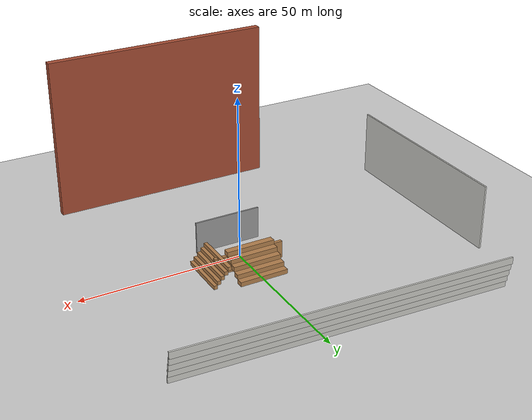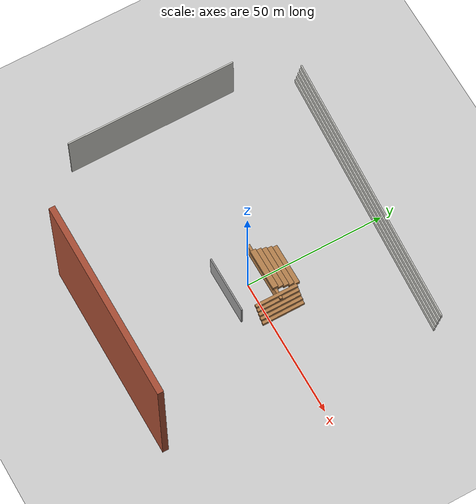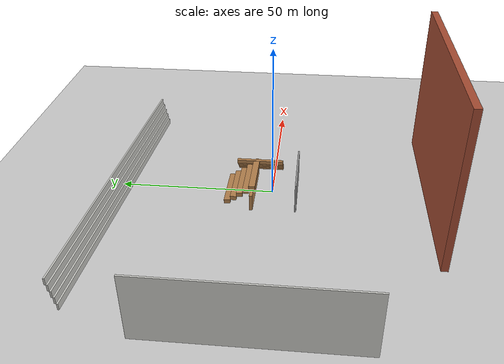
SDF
<sdf version="1.7">
 <world name="default">
  <model name="ground_plane">
   <static>1</static>
   <link name="link">
    <collision name="collision">
     <geometry><plane><normal>0 0 1</normal><size>100 100</size></plane></geometry>
     <surface><friction><ode><mu>100</mu><mu2>50</mu2></ode></friction></surface>
    </collision>
    <visual name="visual">
     <cast_shadows>0</cast_shadows>
     <geometry><plane><normal>0 0 1</normal><size>100 100</size></plane></geometry>
     <material>
      <script><uri>file://media/materials/scripts/gazebo.material</uri><name>Gazebo/Grey</name></script>
     </material>
    </visual>
   </link>
  </model>
  <light name="sun" type="directional">
   <pose>0 0 10 0 -0 0</pose>
   <diffuse>0.8 0.8 0.8 1</diffuse>
   <specular>0.2 0.2 0.2 1</specular>
   <attenuation>
    <range>1000</range>
    <constant>0.9</constant>
    <linear>0.01</linear>
    <quadratic>0.001</quadratic>
   </attenuation>
   <direction>-0.5 0.1 -0.9</direction>
   <spot><inner_angle>0</inner_angle><outer_angle>0</outer_angle><falloff>0</falloff></spot>
  </light>
  <physics name="default_physics" default="0" type="ode">
   <max_contacts>100</max_contacts>
   <max_step_size>0.01</max_step_size>
   <ode>
    <solver>
     <iters>50</iters>
     <type>quick</type>
     <sor>1.3</sor>
     <use_dynamic_moi_rescaling>0</use_dynamic_moi_rescaling>
    </solver>
    <constraints>
     <cfm>0</cfm>
     <erp>0.2</erp>
     <contact_max_correcting_vel>100</contact_max_correcting_vel>
     <contact_surface_layer>0.001</contact_surface_layer>
    </constraints>
   </ode>
   <real_time_factor>1</real_time_factor>
   <real_time_update_rate>1000</real_time_update_rate>
  </physics>
  <gravity>0 0 -9.8</gravity>
  <magnetic_field>6e-06 2.3e-05 -4.2e-05</magnetic_field>
  <atmosphere type="adiabatic"/>
  <scene><ambient>0.4 0.4 0.4 1</ambient><background>0.7 0.7 0.7 1</background><shadows>1</shadows></scene>
  <spherical_coordinates>
   <surface_model>EARTH_WGS84</surface_model>
   <latitude_deg>0</latitude_deg>
   <longitude_deg>0</longitude_deg>
   <elevation>0</elevation>
   <heading_deg>0</heading_deg>
  </spherical_coordinates>
  <model name="Untitled_0">
   <pose>1.76469 -50.5759 0 0 -0 0</pose>
   <link name="Wall_0">
    <collision name="Wall_0_Collision">
     <geometry><box><size>70.5 2.15 50.5</size></box></geometry>
     <pose>0 0 25.25 0 -0 0</pose>
    </collision>
    <visual name="Wall_0_Visual">
     <pose>0 0 25.25 0 -0 0</pose>
     <geometry><box><size>70.5 2.15 50.5</size></box></geometry>
     <material>
      <script><uri>file://media/materials/scripts/gazebo.material</uri><name>Gazebo/Bricks</name></script>
      <ambient>1 1 1 1</ambient>
     </material>
     <meta><layer>0</layer></meta>
    </visual>
   </link>
   <static>1</static>
  </model>
  <model name="Untitled_1">
   <pose>-64.542 -0.116687 0 0 -0 0</pose>
   <link name="Wall_2">
    <collision name="Wall_2_Collision">
     <geometry><box><size>61.25 0.5 20.5</size></box></geometry>
     <pose>0 0 10.25 0 -0 0</pose>
    </collision>
    <visual name="Wall_2_Visual">
     <pose>0 0 10.25 0 -0 0</pose>
     <geometry><box><size>61.25 0.5 20.5</size></box></geometry>
     <material>
      <script><uri>file://media/materials/scripts/gazebo.material</uri><name>Gazebo/CeilingTiled</name></script>
      <ambient>0.996078 0.47451 0.0196078 1</ambient>
     </material>
     <meta><layer>0</layer></meta>
    </visual>
    <pose>0 -1e-06 0 0 -0 1.5708</pose>
   </link>
   <link name="Wall_3">
    <collision name="Wall_3_Collision">
     <geometry><box><size>0.15 0.15 2.5</size></box></geometry>
     <pose>0 0 1.25 0 -0 0</pose>
    </collision>
    <visual name="Wall_3_Visual">
     <pose>0 0 1.25 0 -0 0</pose>
     <geometry><box><size>0.15 0.15 2.5</size></box></geometry>
     <material>
      <script><uri>file://media/materials/scripts/gazebo.material</uri><name>Gazebo/Grey</name></script>
      <ambient>1 1 1 1</ambient>
     </material>
     <meta><layer>0</layer></meta>
    </visual>
    <pose>0 30.375 0 0 -0 0</pose>
   </link>
   <static>1</static>
  </model>
  <model name="Untitled_2">
   <pose>-6.95253 48.424 0 0 -0 3.08477</pose>
   <link name="Stairs_1">
    <visual name="Stairs_1_Visual_0">
     <pose>-1e-06 1 1.05 0 -0 0</pose>
     <geometry><box><size>100.66 0.5 2.1</size></box></geometry>
     <material>
      <script><uri>file://media/materials/scripts/gazebo.material</uri><name>Gazebo/CeilingTiled</name></script>
      <ambient>0.996078 0.47451 0.0196078 1</ambient>
     </material>
     <meta><layer>0</layer></meta>
    </visual>
    <collision name="Stairs_1_Collision_0">
     <geometry><box><size>100.66 0.5 2.1</size></box></geometry>
     <pose>-1e-06 1 1.05 0 -0 0</pose>
    </collision>
    <visual name="Stairs_1_Visual_1">
     <pose>-1e-06 0.5 3.15 0 -0 0</pose>
     <geometry><box><size>100.66 0.5 2.1</size></box></geometry>
     <material>
      <script><uri>file://media/materials/scripts/gazebo.material</uri><name>Gazebo/CeilingTiled</name></script>
      <ambient>0.996078 0.47451 0.0196078 1</ambient>
     </material>
     <meta><layer>0</layer></meta>
    </visual>
    <collision name="Stairs_1_Collision_1">
     <geometry><box><size>100.66 0.5 2.1</size></box></geometry>
     <pose>-1e-06 0.5 3.15 0 -0 0</pose>
    </collision>
    <visual name="Stairs_1_Visual_2">
     <pose>-1e-06 0 5.25 0 -0 0</pose>
     <geometry><box><size>100.66 0.5 2.1</size></box></geometry>
     <material>
      <script><uri>file://media/materials/scripts/gazebo.material</uri><name>Gazebo/CeilingTiled</name></script>
      <ambient>0.996078 0.47451 0.0196078 1</ambient>
     </material>
     <meta><layer>0</layer></meta>
    </visual>
    <collision name="Stairs_1_Collision_2">
     <geometry><box><size>100.66 0.5 2.1</size></box></geometry>
     <pose>-1e-06 0 5.25 0 -0 0</pose>
    </collision>
    <visual name="Stairs_1_Visual_3">
     <pose>-1e-06 -0.5 7.35 0 -0 0</pose>
     <geometry><box><size>100.66 0.5 2.1</size></box></geometry>
     <material>
      <script><uri>file://media/materials/scripts/gazebo.material</uri><name>Gazebo/CeilingTiled</name></script>
      <ambient>0.996078 0.47451 0.0196078 1</ambient>
     </material>
     <meta><layer>0</layer></meta>
    </visual>
    <collision name="Stairs_1_Collision_3">
     <geometry><box><size>100.66 0.5 2.1</size></box></geometry>
     <pose>-1e-06 -0.5 7.35 0 -0 0</pose>
    </collision>
    <visual name="Stairs_1_Visual_4">
     <pose>-1e-06 -1 9.45 0 -0 0</pose>
     <geometry><box><size>100.66 0.5 2.1</size></box></geometry>
     <material>
      <script><uri>file://media/materials/scripts/gazebo.material</uri><name>Gazebo/CeilingTiled</name></script>
      <ambient>0.996078 0.47451 0.0196078 1</ambient>
     </material>
     <meta><layer>0</layer></meta>
    </visual>
    <collision name="Stairs_1_Collision_4">
     <geometry><box><size>100.66 0.5 2.1</size></box></geometry>
     <pose>-1e-06 -1 9.45 0 -0 0</pose>
    </collision>
   </link>
   <static>1</static>
  </model>
  <model name="Untitled_3">
   <pose>0.425 -0.875 0 0 -0 0</pose>
   <link name="Wall_0">
    <collision name="Wall_0_Collision">
     <geometry><box><size>21.85 1 5.5</size></box></geometry>
     <pose>0 0 2.75 0 -0 0</pose>
    </collision>
    <visual name="Wall_0_Visual">
     <pose>0 0 2.75 0 -0 0</pose>
     <geometry><box><size>21.85 1 5.5</size></box></geometry>
     <material>
      <script><uri>file://media/materials/scripts/gazebo.material</uri><name>Gazebo/Wood</name></script>
      <ambient>0.760784 0.662745 0.627451 1</ambient>
     </material>
     <meta><layer>0</layer></meta>
    </visual>
    <pose>-0 6.875 0 0 -0 0</pose>
   </link>
   <link name="Wall_2">
    <collision name="Wall_2_Collision">
     <geometry><box><size>20.5 0.5 10</size></box></geometry>
     <pose>0 0 5 0 -0 0</pose>
    </collision>
    <visual name="Wall_2_Visual">
     <pose>0 0 5 0 -0 0</pose>
     <geometry><box><size>20.5 0.5 10</size></box></geometry>
     <material>
      <script><uri>file://media/materials/scripts/gazebo.material</uri><name>Gazebo/Grey</name></script>
      <ambient>1 1 1 1</ambient>
     </material>
     <meta><layer>0</layer></meta>
    </visual>
    <pose>-0.425 -7.125 0 0 -0 3.14159</pose>
   </link>
   <static>1</static>
  </model>
  <model name="Untitled">
   <pose>3.642 6.15925 0 0 -0 0</pose>
   <link name="Stairs_1">
    <visual name="Stairs_1_Visual_0">
     <pose>-3.642 7.84075 0.7 0 -0 0</pose>
     <geometry><box><size>15 2 1.4</size></box></geometry>
     <material>
      <script><uri>file://media/materials/scripts/gazebo.material</uri><name>Gazebo/Wood</name></script>
      <ambient>0.996078 0.47451 0.0196078 1</ambient>
     </material>
     <meta><layer>0</layer></meta>
    </visual>
    <collision name="Stairs_1_Collision_0">
     <geometry><box><size>15 2 1.4</size></box></geometry>
     <pose>-3.642 7.84075 0.7 0 -0 0</pose>
    </collision>
    <visual name="Stairs_1_Visual_1">
     <pose>-3.642 5.84075 2.1 0 -0 0</pose>
     <geometry><box><size>15 2 1.4</size></box></geometry>
     <material>
      <script><uri>file://media/materials/scripts/gazebo.material</uri><name>Gazebo/Wood</name></script>
      <ambient>0.996078 0.47451 0.0196078 1</ambient>
     </material>
     <meta><layer>0</layer></meta>
    </visual>
    <collision name="Stairs_1_Collision_1">
     <geometry><box><size>15 2 1.4</size></box></geometry>
     <pose>-3.642 5.84075 2.1 0 -0 0</pose>
    </collision>
    <visual name="Stairs_1_Visual_2">
     <pose>-3.642 3.84075 3.5 0 -0 0</pose>
     <geometry><box><size>15 2 1.4</size></box></geometry>
     <material>
      <script><uri>file://media/materials/scripts/gazebo.material</uri><name>Gazebo/Wood</name></script>
      <ambient>0.996078 0.47451 0.0196078 1</ambient>
     </material>
     <meta><layer>0</layer></meta>
    </visual>
    <collision name="Stairs_1_Collision_2">
     <geometry><box><size>15 2 1.4</size></box></geometry>
     <pose>-3.642 3.84075 3.5 0 -0 0</pose>
    </collision>
    <visual name="Stairs_1_Visual_3">
     <pose>-3.642 1.84075 4.9 0 -0 0</pose>
     <geometry><box><size>15 2 1.4</size></box></geometry>
     <material>
      <script><uri>file://media/materials/scripts/gazebo.material</uri><name>Gazebo/Wood</name></script>
      <ambient>0.996078 0.47451 0.0196078 1</ambient>
     </material>
     <meta><layer>0</layer></meta>
    </visual>
    <collision name="Stairs_1_Collision_3">
     <geometry><box><size>15 2 1.4</size></box></geometry>
     <pose>-3.642 1.84075 4.9 0 -0 0</pose>
    </collision>
    <visual name="Stairs_1_Visual_4">
     <pose>-3.642 -0.15925 6.3 0 -0 0</pose>
     <geometry><box><size>15 2 1.4</size></box></geometry>
     <material>
      <script><uri>file://media/materials/scripts/gazebo.material</uri><name>Gazebo/Wood</name></script>
      <ambient>0.996078 0.47451 0.0196078 1</ambient>
     </material>
     <meta><layer>0</layer></meta>
    </visual>
    <collision name="Stairs_1_Collision_4">
     <geometry><box><size>15 2 1.4</size></box></geometry>
     <pose>-3.642 -0.15925 6.3 0 -0 0</pose>
    </collision>
   </link>
   <link name="Stairs_5">
    <visual name="Stairs_5_Visual_0">
     <pose>10.5852 -1.15925 0.6 0 -0 -1.5708</pose>
     <geometry><box><size>15.363 1.1136 1.2</size></box></geometry>
     <material>
      <script><uri>file://media/materials/scripts/gazebo.material</uri><name>Gazebo/Wood</name></script>
      <ambient>0.760784 0.662745 0.627451 1</ambient>
     </material>
     <meta><layer>0</layer></meta>
    </visual>
    <collision name="Stairs_5_Collision_0">
     <geometry><box><size>15.363 1.1136 1.2</size></box></geometry>
     <pose>10.5852 -1.15925 0.6 0 -0 -1.5708</pose>
    </collision>
    <visual name="Stairs_5_Visual_1">
     <pose>9.4716 -1.15925 1.8 0 -0 -1.5708</pose>
     <geometry><box><size>15.363 1.1136 1.2</size></box></geometry>
     <material>
      <script><uri>file://media/materials/scripts/gazebo.material</uri><name>Gazebo/Wood</name></script>
      <ambient>0.760784 0.662745 0.627451 1</ambient>
     </material>
     <meta><layer>0</layer></meta>
    </visual>
    <collision name="Stairs_5_Collision_1">
     <geometry><box><size>15.363 1.1136 1.2</size></box></geometry>
     <pose>9.4716 -1.15925 1.8 0 -0 -1.5708</pose>
    </collision>
    <visual name="Stairs_5_Visual_2">
     <pose>8.358 -1.15925 3 0 -0 -1.5708</pose>
     <geometry><box><size>15.363 1.1136 1.2</size></box></geometry>
     <material>
      <script><uri>file://media/materials/scripts/gazebo.material</uri><name>Gazebo/Wood</name></script>
      <ambient>0.760784 0.662745 0.627451 1</ambient>
     </material>
     <meta><layer>0</layer></meta>
    </visual>
    <collision name="Stairs_5_Collision_2">
     <geometry><box><size>15.363 1.1136 1.2</size></box></geometry>
     <pose>8.358 -1.15925 3 0 -0 -1.5708</pose>
    </collision>
    <visual name="Stairs_5_Visual_3">
     <pose>7.2444 -1.15925 4.2 0 -0 -1.5708</pose>
     <geometry><box><size>15.363 1.1136 1.2</size></box></geometry>
     <material>
      <script><uri>file://media/materials/scripts/gazebo.material</uri><name>Gazebo/Wood</name></script>
      <ambient>0.760784 0.662745 0.627451 1</ambient>
     </material>
     <meta><layer>0</layer></meta>
    </visual>
    <collision name="Stairs_5_Collision_3">
     <geometry><box><size>15.363 1.1136 1.2</size></box></geometry>
     <pose>7.2444 -1.15925 4.2 0 -0 -1.5708</pose>
    </collision>
    <visual name="Stairs_5_Visual_4">
     <pose>6.1308 -1.15925 5.4 0 -0 -1.5708</pose>
     <geometry><box><size>15.363 1.1136 1.2</size></box></geometry>
     <material>
      <script><uri>file://media/materials/scripts/gazebo.material</uri><name>Gazebo/Wood</name></script>
      <ambient>0.760784 0.662745 0.627451 1</ambient>
     </material>
     <meta><layer>0</layer></meta>
    </visual>
    <collision name="Stairs_5_Collision_4">
     <geometry><box><size>15.363 1.1136 1.2</size></box></geometry>
     <pose>6.1308 -1.15925 5.4 0 -0 -1.5708</pose>
    </collision>
   </link>
   <static>1</static>
  </model>
 </world>
</sdf>
